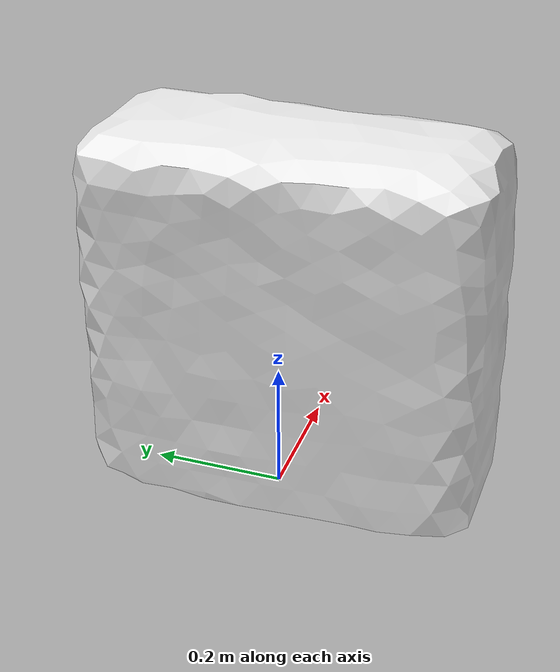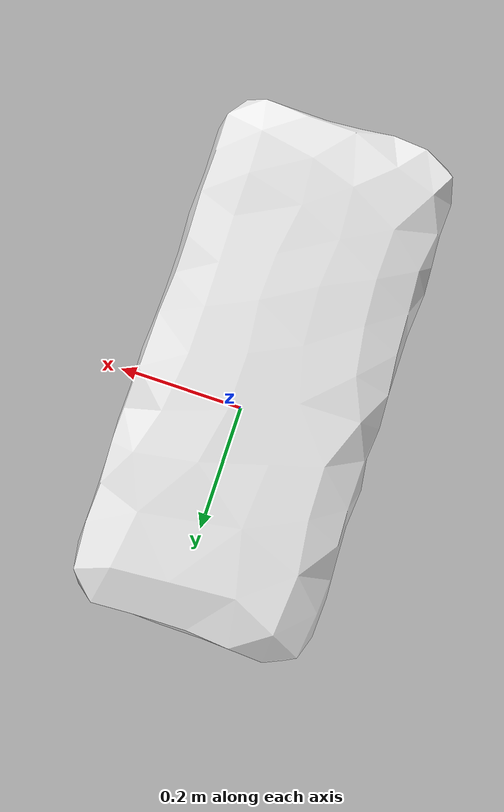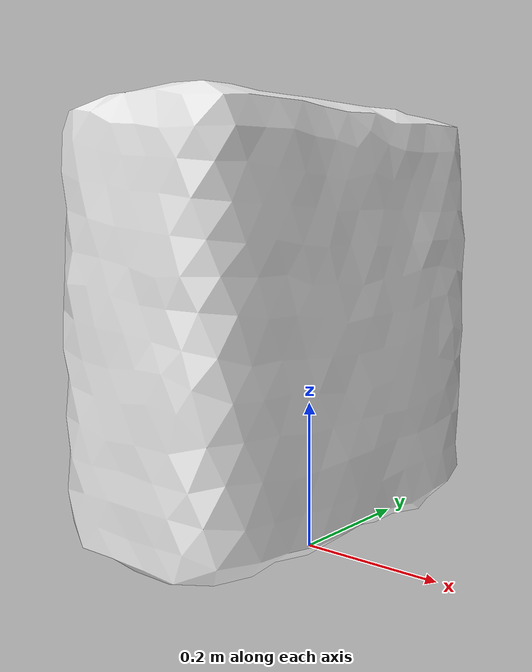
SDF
<?xml version="1.0" ?><sdf version="1.5"><model name="warrior-box2">
<link name="link">
<pose>0 0 0 0 0 0</pose>
<inertial>
<pose>-0.0148185 -0.032537 0.311192 0 0 0</pose>
<mass>1.105</mass>
<inertia>
<ixx>0.059689</ixx>
<ixy>0</ixy><iyy>0.036669</iyy>
<ixz>0</ixz><iyz>0</iyz><izz>0.036702</izz>
</inertia>
</inertial>
<visual name="visual">
<pose>0 0 0 0 0 0</pose>
<geometry><mesh><uri>model://warrior-box2/meshes/warrior-box2.dae</uri></mesh></geometry>
<material><script><uri>file://media/materials/scripts/gazebo.material</uri><name>Gazebo/WhiteGlow</name></script></material></visual>
<collision name="collision"><pose>0 0 0 0 0 0</pose><geometry><mesh><uri>model://warrior-box2/meshes/warrior-box2.dae</uri></mesh></geometry>
<surface><friction><ode><mu>1.000000</mu><mu2>1.000000</mu2></ode></friction></surface>
</collision></link></model></sdf>
